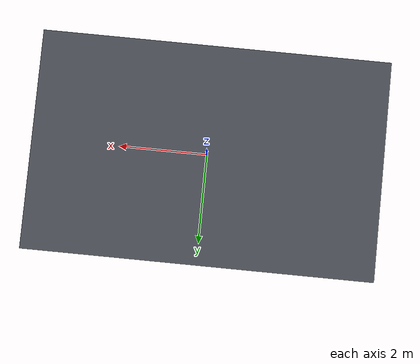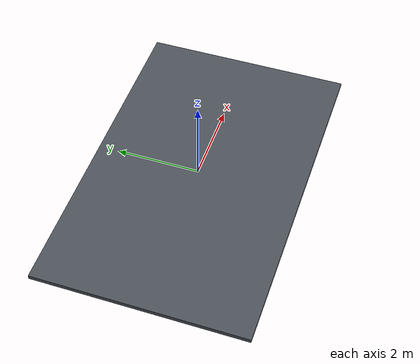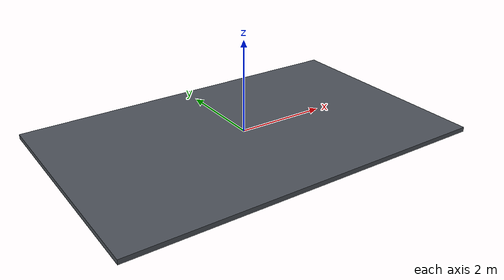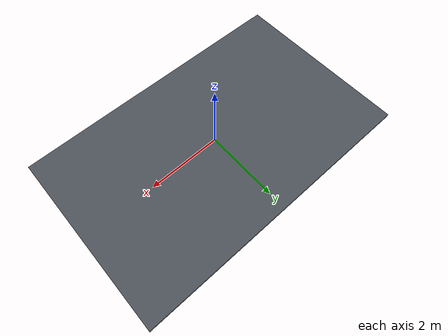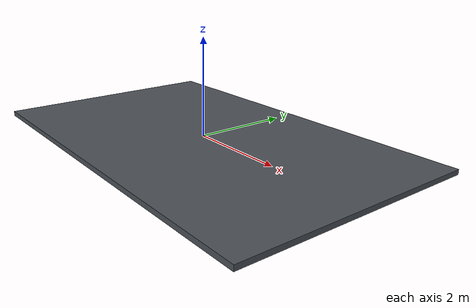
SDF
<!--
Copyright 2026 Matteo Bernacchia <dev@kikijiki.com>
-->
<?xml version="1.0"?>
<!-- SPDX-License-Identifier: MIT -->
<sdf version="1.9">
  <world name="restocking">
    <physics name="restocking_physics" type="ignored">
      <max_step_size>0.001</max_step_size>
      <real_time_factor>1.0</real_time_factor>
      <dart>
        <collision_detector>bullet</collision_detector>
      </dart>
    </physics>

    <plugin filename="gz-sim-physics-system" name="gz::sim::systems::Physics"/>
    <plugin filename="gz-sim-user-commands-system" name="gz::sim::systems::UserCommands"/>
    <plugin filename="gz-sim-scene-broadcaster-system" name="gz::sim::systems::SceneBroadcaster"/>
    <!-- Nothing renders a camera sensor without this, so it is unconditional. With no display it
         falls back to headless ogre2. -->
    <plugin filename="gz-sim-sensors-system" name="gz::sim::systems::Sensors">
      <render_engine>ogre2</render_engine>
    </plugin>
    <plugin filename="restocker_attachment_system" name="restocker_gazebo::AttachmentSystem"/>

    <gravity>0 0 -9.80665</gravity>
    <scene>
      <ambient>0.35 0.35 0.35 1</ambient>
      <background>0.08 0.09 0.11 1</background>
      <shadows>true</shadows>
    </scene>

    <light name="workcell_sun" type="directional">
      <cast_shadows>true</cast_shadows>
      <pose>0 0 6 0 0 0</pose>
      <diffuse>0.9 0.9 0.9 1</diffuse>
      <specular>0.25 0.25 0.25 1</specular>
      <direction>-0.4 0.2 -1.0</direction>
    </light>

    <model name="floor">
      <static>true</static>
      <link name="floor_link">
        <collision name="floor_collision">
          <pose>0 0 -0.05 0 0 0</pose>
          <geometry><box><size>8 5 0.1</size></box></geometry>
          <surface>
            <friction>
              <ode><mu>0.9</mu><mu2>0.9</mu2></ode>
            </friction>
          </surface>
        </collision>
        <visual name="floor_visual">
          <pose>0 0 -0.05 0 0 0</pose>
          <geometry><box><size>8 5 0.1</size></box></geometry>
          <material>
            <ambient>0.22 0.24 0.27 1</ambient>
            <diffuse>0.30 0.32 0.35 1</diffuse>
          </material>
        </visual>
      </link>
    </model>
  </world>
</sdf>
